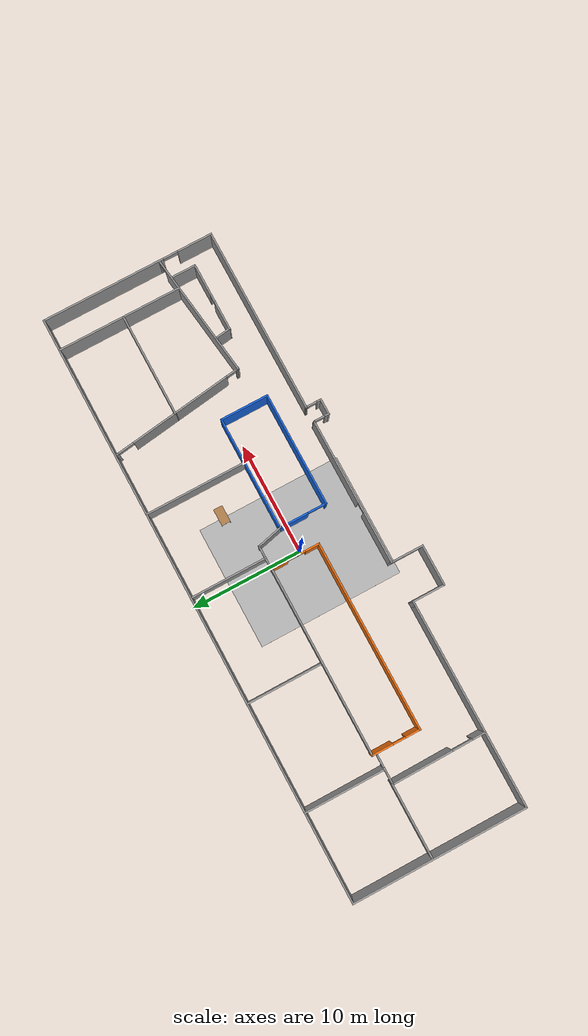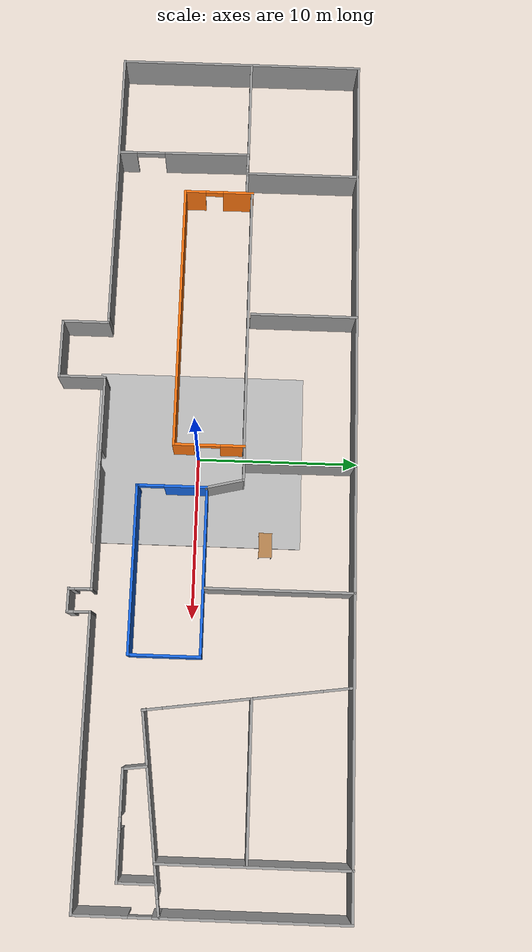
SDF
<sdf version="1.4">
 <world name="default">
  <scene><ambient>0.8 0.8 0.8 1</ambient><background>0.7 0.7 0.7 1</background><shadows>true</shadows></scene>
  <include><uri>model://sun</uri><pose>-2.0 2.0 2.0 0 0 0</pose></include>
  <include><uri>model://quarto_andar/pisosala</uri></include>
  <include><uri>model://quarto_andar/mesa</uri><pose>5.5 4.3 0.4 0 0 0</pose></include>
  <include><uri>model://quarto_andar</uri></include>
  <physics type="ode">
   <real_time_update_rate>1000.0</real_time_update_rate>
   <max_step_size>0.001</max_step_size>
   <real_time_factor>1</real_time_factor>
   <ode>
    <solver>
     <type>quick</type>
     <iters>150</iters>
     <precon_iters>0</precon_iters>
     <sor>1.400000</sor>
     <use_dynamic_moi_rescaling>1</use_dynamic_moi_rescaling>
    </solver>
    <constraints>
     <cfm>0.00001</cfm>
     <erp>0.2</erp>
     <contact_max_correcting_vel>2000.000000</contact_max_correcting_vel>
     <contact_surface_layer>0.01000</contact_surface_layer>
    </constraints>
   </ode>
  </physics>
 </world>
</sdf>

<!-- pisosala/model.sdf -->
<sdf version="1.6">
  <model name="pisosala_forca">
    <static>true</static>
    <link name="course_link">
      <collision name="course_collision">
        <geometry>
          <plane>
            <normal>0 0 1</normal>
            <size>10 13</size>
          </plane>
        </geometry>
        <surface>
          <friction>
            <ode>
              <mu>100</mu>
              <mu2>50</mu2>
            </ode>
          </friction>
        </surface>
      </collision>
      <visual name="course_visual">
        <cast_shadows>false</cast_shadows>
        <geometry>
          <mesh>
            <uri>model://forca/pisosala/materials/scripts/piso.dae</uri>
            <scale>1 1 1</scale>
          </mesh>
        </geometry>
      </visual>
    </link>
  </model>
</sdf>

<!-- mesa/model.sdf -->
<sdf version='1.6'>
  <model name='lab404'>
    <model name='table'>
      <static>1</static>
      <link name='link'>
        <collision name='surface'>
          <pose frame=''>0 0 1 0 -0 0</pose>
          <geometry>
            <box>
              <size>1.5 0.8 0.03</size>
            </box>
          </geometry>
          <surface>
            <friction>
              <ode>
                <mu>0.6</mu>
                <mu2>0.6</mu2>
              </ode>
            </friction>
          </surface>
        </collision>
        <visual name='visual1'>
          <pose frame=''>0 0 1 0 -0 0</pose>
          <geometry>
            <box>
              <size>1.5 0.8 0.03</size>
            </box>
          </geometry>
          <material>
            <script>
              <uri>file://media/materials/scripts/gazebo.material</uri>
              <name>Gazebo/Wood</name>
            </script>
          </material>
        </visual>
        <collision name='front_left_leg'>
          <pose frame=''>0.68 0.38 0.5 0 -0 0</pose>
          <geometry>
            <cylinder>
              <radius>0.02</radius>
              <length>1</length>
            </cylinder>
          </geometry>
        </collision>
        <visual name='front_left_leg'>
          <pose frame=''>0.68 0.38 0.5 0 -0 0</pose>
          <geometry>
            <cylinder>
              <radius>0.02</radius>
              <length>1</length>
            </cylinder>
          </geometry>
          <material>
            <script>
              <uri>file://media/materials/scripts/gazebo.material</uri>
              <name>Gazebo/Grey</name>
            </script>
          </material>
        </visual>
        <collision name='front_right_leg'>
          <pose frame=''>0.68 -0.38 0.5 0 -0 0</pose>
          <geometry>
            <cylinder>
              <radius>0.02</radius>
              <length>1</length>
            </cylinder>
          </geometry>
        </collision>
        <visual name='front_right_leg'>
          <pose frame=''>0.68 -0.38 0.5 0 -0 0</pose>
          <geometry>
            <cylinder>
              <radius>0.02</radius>
              <length>1</length>
            </cylinder>
          </geometry>
          <material>
            <script>
              <uri>file://media/materials/scripts/gazebo.material</uri>
              <name>Gazebo/Grey</name>
            </script>
          </material>
        </visual>
        <collision name='back_right_leg'>
          <pose frame=''>-0.68 -0.38 0.5 0 -0 0</pose>
          <geometry>
            <cylinder>
              <radius>0.02</radius>
              <length>1</length>
            </cylinder>
          </geometry>
        </collision>
        <visual name='back_right_leg'>
          <pose frame=''>-0.68 -0.38 0.5 0 -0 0</pose>
          <geometry>
            <cylinder>
              <radius>0.02</radius>
              <length>1</length>
            </cylinder>
          </geometry>
          <material>
            <script>
              <uri>file://media/materials/scripts/gazebo.material</uri>
              <name>Gazebo/Grey</name>
            </script>
          </material>
        </visual>
        <collision name='back_left_leg'>
          <pose frame=''>-0.68 0.38 0.5 0 -0 0</pose>
          <geometry>
            <cylinder>
              <radius>0.02</radius>
              <length>1</length>
            </cylinder>
          </geometry>
        </collision>
        <visual name='back_left_leg'>
          <pose frame=''>-0.68 0.38 0.5 0 -0 0</pose>
          <geometry>
            <cylinder>
              <radius>0.02</radius>
              <length>1</length>
            </cylinder>
          </geometry>
          <material>
            <script>
              <uri>file://media/materials/scripts/gazebo.material</uri>
              <name>Gazebo/Grey</name>
            </script>
          </material>
        </visual>
      </link>
      <pose frame=''>0 -0 0 0 -0 0</pose>
    </model>
    <static>0</static>
    <allow_auto_disable>1</allow_auto_disable>
  </model>
</sdf>

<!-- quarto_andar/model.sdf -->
<sdf version='1.6'>
  <model name='quarto_andar'>
    <pose frame=''>0.034945 0.423083 0 0 -0 0</pose>
    <link name='Wall_0'>
      <collision name='Wall_0_Collision'>
        <geometry>
          <box>
            <size>15.75 0.15 2.5</size>
          </box>
        </geometry>
        <pose frame=''>0 0 1.25 0 -0 0</pose>
      </collision>
      <visual name='Wall_0_Visual'>
        <pose frame=''>0 0 1.25 0 -0 0</pose>
        <geometry>
          <box>
            <size>15.75 0.15 2.5</size>
          </box>
        </geometry>
        <material>
          <script>
            <uri>file://media/materials/scripts/gazebo.material</uri>
            <name>Gazebo/Grey</name>
          </script>
          <ambient>1 1 1 1</ambient>
        </material>
        <meta>
          <layer>0</layer>
        </meta>
      </visual>
      <pose frame=''>-26.575 1.42319 0 0 -0 -1.5708</pose>
    </link>
    <link name='Wall_1'>
      <collision name='Wall_1_Collision'>
        <geometry>
          <box>
            <size>18.25 0.15 2.5</size>
          </box>
        </geometry>
        <pose frame=''>0 0 1.25 0 -0 0</pose>
      </collision>
      <visual name='Wall_1_Visual'>
        <pose frame=''>0 0 1.25 0 -0 0</pose>
        <geometry>
          <box>
            <size>18.25 0.15 2.5</size>
          </box>
        </geometry>
        <material>
          <script>
            <uri>file://media/materials/scripts/gazebo.material</uri>
            <name>Gazebo/Grey</name>
          </script>
          <ambient>0.333333 0.341176 0.32549 1</ambient>
        </material>
        <meta>
          <layer>0</layer>
        </meta>
      </visual>
      <pose frame=''>-17.525 -6.37681 0 0 -0 0</pose>
    </link>
    <link name='Wall_10'>
      <pose frame=''>-19.9586 -2.12464 0 0 -0 1.58125</pose>
      <visual name='Wall_10_Visual_0'>
        <pose frame=''>-3.66811 0 1.25 0 -0 0</pose>
        <geometry>
          <box>
            <size>1.15436 0.15 2.5</size>
          </box>
        </geometry>
        <material>
          <script>
            <uri>file://media/materials/scripts/gazebo.material</uri>
            <name>Gazebo/Grey</name>
          </script>
          <ambient>0.333333 0.341176 0.32549 1</ambient>
        </material>
        <meta>
          <layer>0</layer>
        </meta>
      </visual>
      <collision name='Wall_10_Collision_0'>
        <geometry>
          <box>
            <size>1.15436 0.15 2.5</size>
          </box>
        </geometry>
        <pose frame=''>-3.66811 0 1.25 0 -0 0</pose>
      </collision>
      <visual name='Wall_10_Visual_1'>
        <pose frame=''>1.49044 0 1.25 0 -0 0</pose>
        <geometry>
          <box>
            <size>5.5097 0.15 2.5</size>
          </box>
        </geometry>
        <material>
          <script>
            <uri>file://media/materials/scripts/gazebo.material</uri>
            <name>Gazebo/Grey</name>
          </script>
          <ambient>0.333333 0.341176 0.32549 1</ambient>
        </material>
        <meta>
          <layer>0</layer>
        </meta>
      </visual>
      <collision name='Wall_10_Collision_1'>
        <geometry>
          <box>
            <size>5.5097 0.15 2.5</size>
          </box>
        </geometry>
        <pose frame=''>1.49044 0 1.25 0 -0 0</pose>
      </collision>
      <visual name='Wall_10_Visual_2'>
        <pose frame=''>-2.17767 0 2.25 0 -0 0</pose>
        <geometry>
          <box>
            <size>1.82652 0.15 0.5</size>
          </box>
        </geometry>
        <material>
          <script>
            <uri>file://media/materials/scripts/gazebo.material</uri>
            <name>Gazebo/Grey</name>
          </script>
          <ambient>0.333333 0.341176 0.32549 1</ambient>
        </material>
        <meta>
          <layer>0</layer>
        </meta>
      </visual>
      <collision name='Wall_10_Collision_2'>
        <geometry>
          <box>
            <size>1.82652 0.15 0.5</size>
          </box>
        </geometry>
        <pose frame=''>-2.17767 0 2.25 0 -0 0</pose>
      </collision>
    </link>
    <link name='Wall_11'>
      <collision name='Wall_11_Collision'>
        <geometry>
          <box>
            <size>6.62054 0.15 2.5</size>
          </box>
        </geometry>
        <pose frame=''>0 0 1.25 0 -0 0</pose>
      </collision>
      <visual name='Wall_11_Visual'>
        <pose frame=''>0 0 1.25 0 -0 0</pose>
        <geometry>
          <box>
            <size>6.62054 0.15 2.5</size>
          </box>
        </geometry>
        <material>
          <script>
            <uri>file://media/materials/scripts/gazebo.material</uri>
            <name>Gazebo/Grey</name>
          </script>
          <ambient>1 1 1 1</ambient>
        </material>
        <meta>
          <layer>0</layer>
        </meta>
      </visual>
      <pose frame=''>-23.2375 2.07898 0 0 -0 3.14159</pose>
    </link>
    <link name='Wall_13'>
      <collision name='Wall_13_Collision'>
        <geometry>
          <box>
            <size>7.25 0.15 2.5</size>
          </box>
        </geometry>
        <pose frame=''>0 0 1.25 0 -0 0</pose>
      </collision>
      <visual name='Wall_13_Visual'>
        <pose frame=''>0 0 1.25 0 -0 0</pose>
        <geometry>
          <box>
            <size>7.25 0.15 2.5</size>
          </box>
        </geometry>
        <material>
          <script>
            <uri>file://media/materials/scripts/gazebo.material</uri>
            <name>Gazebo/Grey</name>
          </script>
          <ambient>1 1 1 1</ambient>
        </material>
        <meta>
          <layer>0</layer>
        </meta>
      </visual>
      <pose frame=''>-18.6614 5.66281 0 0 -0 -1.5708</pose>
    </link>
    <link name='Wall_17'>
      <collision name='Wall_17_Collision'>
        <geometry>
          <box>
            <size>17 0.15 2.5</size>
          </box>
        </geometry>
        <pose frame=''>0 0 1.25 0 -0 0</pose>
      </collision>
      <visual name='Wall_17_Visual'>
        <pose frame=''>0 0 1.25 0 -0 0</pose>
        <geometry>
          <box>
            <size>17 0.15 2.5</size>
          </box>
        </geometry>
        <material>
          <script>
            <uri>file://media/materials/scripts/gazebo.material</uri>
            <name>Gazebo/Grey</name>
          </script>
          <ambient>0.976471 0.45098 0.054902 1</ambient>
        </material>
        <meta>
          <layer>0</layer>
        </meta>
      </visual>
      <pose frame=''>-8.8443 -1.93121 0 0 -0 0</pose>
    </link>
    <link name='Wall_18'>
      <pose frame=''>-0.419302 0.243787 0 0 -0 1.5708</pose>
      <visual name='Wall_18_Visual_0'>
        <pose frame=''>-1.587 0 1.25 0 -0 0</pose>
        <geometry>
          <box>
            <size>1.32599 0.15 2.5</size>
          </box>
        </geometry>
        <material>
          <script>
            <uri>file://media/materials/scripts/gazebo.material</uri>
            <name>Gazebo/Grey</name>
          </script>
          <ambient>0.976471 0.45098 0.054902 1</ambient>
        </material>
        <meta>
          <layer>0</layer>
        </meta>
      </visual>
      <collision name='Wall_18_Collision_0'>
        <geometry>
          <box>
            <size>1.32599 0.15 2.5</size>
          </box>
        </geometry>
        <pose frame=''>-1.587 0 1.25 0 -0 0</pose>
      </collision>
      <visual name='Wall_18_Visual_1'>
        <pose frame=''>1.46826 0 1.25 0 -0 0</pose>
        <geometry>
          <box>
            <size>1.56347 0.15 2.5</size>
          </box>
        </geometry>
        <material>
          <script>
            <uri>file://media/materials/scripts/gazebo.material</uri>
            <name>Gazebo/Grey</name>
          </script>
          <ambient>0.976471 0.45098 0.054902 1</ambient>
        </material>
        <meta>
          <layer>0</layer>
        </meta>
      </visual>
      <collision name='Wall_18_Collision_1'>
        <geometry>
          <box>
            <size>1.56347 0.15 2.5</size>
          </box>
        </geometry>
        <pose frame=''>1.46826 0 1.25 0 -0 0</pose>
      </collision>
      <visual name='Wall_18_Visual_2'>
        <pose frame=''>-0.11874 0 2.25 0 -0 0</pose>
        <geometry>
          <box>
            <size>1.61054 0.15 0.5</size>
          </box>
        </geometry>
        <material>
          <script>
            <uri>file://media/materials/scripts/gazebo.material</uri>
            <name>Gazebo/Grey</name>
          </script>
          <ambient>0.976471 0.45098 0.054902 1</ambient>
        </material>
        <meta>
          <layer>0</layer>
        </meta>
      </visual>
      <collision name='Wall_18_Collision_2'>
        <geometry>
          <box>
            <size>1.61054 0.15 0.5</size>
          </box>
        </geometry>
        <pose frame=''>-0.11874 0 2.25 0 -0 0</pose>
      </collision>
    </link>
    <link name='Wall_19'>
      <collision name='Wall_19_Collision'>
        <geometry>
          <box>
            <size>17 0.15 2.5</size>
          </box>
        </geometry>
        <pose frame=''>0 0 1.25 0 -0 0</pose>
      </collision>
      <visual name='Wall_19_Visual'>
        <pose frame=''>0 0 1.25 0 -0 0</pose>
        <geometry>
          <box>
            <size>17 0.15 2.5</size>
          </box>
        </geometry>
        <material>
          <script>
            <uri>file://media/materials/scripts/gazebo.material</uri>
            <name>Gazebo/Grey</name>
          </script>
          <ambient>1 1 1 1</ambient>
        </material>
        <meta>
          <layer>0</layer>
        </meta>
      </visual>
      <pose frame=''>-8.8443 2.38523 0 0 -0 3.14159</pose>
    </link>
    <link name='Wall_2'>
      <collision name='Wall_2_Collision'>
        <geometry>
          <box>
            <size>0.5 0.15 2.5</size>
          </box>
        </geometry>
        <pose frame=''>0 0 1.25 0 -0 0</pose>
      </collision>
      <visual name='Wall_2_Visual'>
        <pose frame=''>0 0 1.25 0 -0 0</pose>
        <geometry>
          <box>
            <size>0.5 0.15 2.5</size>
          </box>
        </geometry>
        <material>
          <script>
            <uri>file://media/materials/scripts/gazebo.material</uri>
            <name>Gazebo/Grey</name>
          </script>
          <ambient>0.333333 0.341176 0.32549 1</ambient>
        </material>
        <meta>
          <layer>0</layer>
        </meta>
      </visual>
      <pose frame=''>-8.3 -6.37681 0 0 -0 0</pose>
    </link>
    <link name='Wall_21'>
      <pose frame=''>-17.2693 0.243787 0 0 -0 1.5708</pose>
      <visual name='Wall_21_Visual_0'>
        <pose frame=''>-1.55247 0 1.25 0 -0 0</pose>
        <geometry>
          <box>
            <size>1.39506 0.15 2.5</size>
          </box>
        </geometry>
        <material>
          <script>
            <uri>file://media/materials/scripts/gazebo.material</uri>
            <name>Gazebo/Grey</name>
          </script>
          <ambient>0.976471 0.45098 0.054902 1</ambient>
        </material>
        <meta>
          <layer>0</layer>
        </meta>
      </visual>
      <collision name='Wall_21_Collision_0'>
        <geometry>
          <box>
            <size>1.39506 0.15 2.5</size>
          </box>
        </geometry>
        <pose frame=''>-1.55247 0 1.25 0 -0 0</pose>
      </collision>
      <visual name='Wall_21_Visual_1'>
        <pose frame=''>1.25785 0 1.25 0 -0 0</pose>
        <geometry>
          <box>
            <size>1.98431 0.15 2.5</size>
          </box>
        </geometry>
        <material>
          <script>
            <uri>file://media/materials/scripts/gazebo.material</uri>
            <name>Gazebo/Grey</name>
          </script>
          <ambient>0.976471 0.45098 0.054902 1</ambient>
        </material>
        <meta>
          <layer>0</layer>
        </meta>
      </visual>
      <collision name='Wall_21_Collision_1'>
        <geometry>
          <box>
            <size>1.98431 0.15 2.5</size>
          </box>
        </geometry>
        <pose frame=''>1.25785 0 1.25 0 -0 0</pose>
      </collision>
      <visual name='Wall_21_Visual_2'>
        <pose frame=''>-0.294622 0 2.25 0 -0 0</pose>
        <geometry>
          <box>
            <size>1.12063 0.15 0.5</size>
          </box>
        </geometry>
        <material>
          <script>
            <uri>file://media/materials/scripts/gazebo.material</uri>
            <name>Gazebo/Grey</name>
          </script>
          <ambient>0.976471 0.45098 0.054902 1</ambient>
        </material>
        <meta>
          <layer>0</layer>
        </meta>
      </visual>
      <collision name='Wall_21_Collision_2'>
        <geometry>
          <box>
            <size>1.12063 0.15 0.5</size>
          </box>
        </geometry>
        <pose frame=''>-0.294622 0 2.25 0 -0 0</pose>
      </collision>
    </link>
    <link name='Wall_23'>
      <collision name='Wall_23_Collision'>
        <geometry>
          <box>
            <size>6.75 0.15 2.5</size>
          </box>
        </geometry>
        <pose frame=''>0 0 1.25 0 -0 0</pose>
      </collision>
      <visual name='Wall_23_Visual'>
        <pose frame=''>0 0 1.25 0 -0 0</pose>
        <geometry>
          <box>
            <size>6.75 0.15 2.5</size>
          </box>
        </geometry>
        <material>
          <script>
            <uri>file://media/materials/scripts/gazebo.material</uri>
            <name>Gazebo/Grey</name>
          </script>
          <ambient>1 1 1 1</ambient>
        </material>
        <meta>
          <layer>0</layer>
        </meta>
      </visual>
      <pose frame=''>-8.99298 5.89781 0 0 -0 -1.5708</pose>
    </link>
    <link name='Wall_27'>
      <collision name='Wall_27_Collision'>
        <geometry>
          <box>
            <size>6.88613 0.15 2.5</size>
          </box>
        </geometry>
        <pose frame=''>0 0 1.25 0 -0 0</pose>
      </collision>
      <visual name='Wall_27_Visual'>
        <pose frame=''>0 0 1.25 0 -0 0</pose>
        <geometry>
          <box>
            <size>6.88613 0.15 2.5</size>
          </box>
        </geometry>
        <material>
          <script>
            <uri>file://media/materials/scripts/gazebo.material</uri>
            <name>Gazebo/Grey</name>
          </script>
          <ambient>1 1 1 1</ambient>
        </material>
        <meta>
          <layer>0</layer>
        </meta>
      </visual>
      <pose frame=''>0.599951 5.82122 0 0 -0 1.57213</pose>
    </link>
    <link name='Wall_29'>
      <collision name='Wall_29_Collision'>
        <geometry>
          <box>
            <size>2.42218 0.15 2.5</size>
          </box>
        </geometry>
        <pose frame=''>0 0 1.25 0 -0 0</pose>
      </collision>
      <visual name='Wall_29_Visual'>
        <pose frame=''>0 0 1.25 0 -0 0</pose>
        <geometry>
          <box>
            <size>2.42218 0.15 2.5</size>
          </box>
        </geometry>
        <material>
          <script>
            <uri>file://media/materials/scripts/gazebo.material</uri>
            <name>Gazebo/Grey</name>
          </script>
          <ambient>1 1 1 1</ambient>
        </material>
        <meta>
          <layer>0</layer>
        </meta>
      </visual>
      <pose frame=''>1.94624 1.29692 0 0 -0 -1.33694</pose>
    </link>
    <link name='Wall_3'>
      <collision name='Wall_3_Collision'>
        <geometry>
          <box>
            <size>3 0.15 2.5</size>
          </box>
        </geometry>
        <pose frame=''>0 0 1.25 0 -0 0</pose>
      </collision>
      <visual name='Wall_3_Visual'>
        <pose frame=''>0 0 1.25 0 -0 0</pose>
        <geometry>
          <box>
            <size>3 0.15 2.5</size>
          </box>
        </geometry>
        <material>
          <script>
            <uri>file://media/materials/scripts/gazebo.material</uri>
            <name>Gazebo/Grey</name>
          </script>
          <ambient>0.333333 0.341176 0.32549 1</ambient>
        </material>
        <meta>
          <layer>0</layer>
        </meta>
      </visual>
      <pose frame=''>-8.125 -7.80181 0 0 -0 -1.5708</pose>
    </link>
    <link name='Wall_31'>
      <collision name='Wall_31_Collision'>
        <geometry>
          <box>
            <size>9 0.15 2.5</size>
          </box>
        </geometry>
        <pose frame=''>0 0 1.25 0 -0 0</pose>
      </collision>
      <visual name='Wall_31_Visual'>
        <pose frame=''>0 0 1.25 0 -0 0</pose>
        <geometry>
          <box>
            <size>9 0.15 2.5</size>
          </box>
        </geometry>
        <material>
          <script>
            <uri>file://media/materials/scripts/gazebo.material</uri>
            <name>Gazebo/Grey</name>
          </script>
          <ambient>1 1 1 1</ambient>
        </material>
        <meta>
          <layer>0</layer>
        </meta>
      </visual>
      <pose frame=''>8.29134 4.76549 0 0 -0 1.5708</pose>
    </link>
    <link name='Wall_33'>
      <pose frame=''>2.20086 -1.90819 0 0 -0 -1.57037</pose>
      <visual name='Wall_33_Visual_0'>
        <pose frame=''>-0.85605 0 1.25 0 -0 0</pose>
        <geometry>
          <box>
            <size>2.6378 0.15 2.5</size>
          </box>
        </geometry>
        <material>
          <script>
            <uri>file://media/materials/scripts/gazebo.material</uri>
            <name>Gazebo/Grey</name>
          </script>
          <ambient>0.0862745 0.403922 0.890196 1</ambient>
        </material>
        <meta>
          <layer>0</layer>
        </meta>
      </visual>
      <collision name='Wall_33_Collision_0'>
        <geometry>
          <box>
            <size>2.6378 0.15 2.5</size>
          </box>
        </geometry>
        <pose frame=''>-0.85605 0 1.25 0 -0 0</pose>
      </collision>
      <visual name='Wall_33_Visual_1'>
        <pose frame=''>2.08884 0 1.25 0 -0 0</pose>
        <geometry>
          <box>
            <size>0.172213 0.15 2.5</size>
          </box>
        </geometry>
        <material>
          <script>
            <uri>file://media/materials/scripts/gazebo.material</uri>
            <name>Gazebo/Grey</name>
          </script>
          <ambient>0.0862745 0.403922 0.890196 1</ambient>
        </material>
        <meta>
          <layer>0</layer>
        </meta>
      </visual>
      <collision name='Wall_33_Collision_1'>
        <geometry>
          <box>
            <size>0.172213 0.15 2.5</size>
          </box>
        </geometry>
        <pose frame=''>2.08884 0 1.25 0 -0 0</pose>
      </collision>
      <visual name='Wall_33_Visual_2'>
        <pose frame=''>1.23279 0 2.25 0 -0 0</pose>
        <geometry>
          <box>
            <size>1.53989 0.15 0.5</size>
          </box>
        </geometry>
        <material>
          <script>
            <uri>file://media/materials/scripts/gazebo.material</uri>
            <name>Gazebo/Grey</name>
          </script>
          <ambient>0.0862745 0.403922 0.890196 1</ambient>
        </material>
        <meta>
          <layer>0</layer>
        </meta>
      </visual>
      <collision name='Wall_33_Collision_2'>
        <geometry>
          <box>
            <size>1.53989 0.15 0.5</size>
          </box>
        </geometry>
        <pose frame=''>1.23279 0 2.25 0 -0 0</pose>
      </collision>
    </link>
    <link name='Wall_35'>
      <collision name='Wall_35_Collision'>
        <geometry>
          <box>
            <size>10 0.15 2.5</size>
          </box>
        </geometry>
        <pose frame=''>0 0 1.25 0 -0 0</pose>
      </collision>
      <visual name='Wall_35_Visual'>
        <pose frame=''>0 0 1.25 0 -0 0</pose>
        <geometry>
          <box>
            <size>10 0.15 2.5</size>
          </box>
        </geometry>
        <material>
          <script>
            <uri>file://media/materials/scripts/gazebo.material</uri>
            <name>Gazebo/Grey</name>
          </script>
          <ambient>0.0862745 0.403922 0.890196 1</ambient>
        </material>
        <meta>
          <layer>0</layer>
        </meta>
      </visual>
      <pose frame=''>7.37712 0.21748 0 0 -0 3.14159</pose>
    </link>
    <link name='Wall_38'>
      <collision name='Wall_38_Collision'>
        <geometry>
          <box>
            <size>10.2599 0.15 2.5</size>
          </box>
        </geometry>
        <pose frame=''>0 0 1.25 0 -0 0</pose>
      </collision>
      <visual name='Wall_38_Visual'>
        <pose frame=''>0 0 1.25 0 -0 0</pose>
        <geometry>
          <box>
            <size>10.2599 0.15 2.5</size>
          </box>
        </geometry>
        <material>
          <script>
            <uri>file://media/materials/scripts/gazebo.material</uri>
            <name>Gazebo/Grey</name>
          </script>
          <ambient>0.0862745 0.403922 0.890196 1</ambient>
        </material>
        <meta>
          <layer>0</layer>
        </meta>
      </visual>
      <pose frame=''>7.25673 -4.02715 0 0 -0 -0.00046</pose>
    </link>
    <link name='Wall_4'>
      <collision name='Wall_4_Collision'>
        <geometry>
          <box>
            <size>3.75 0.15 2.5</size>
          </box>
        </geometry>
        <pose frame=''>0 0 1.25 0 -0 0</pose>
      </collision>
      <visual name='Wall_4_Visual'>
        <pose frame=''>0 0 1.25 0 -0 0</pose>
        <geometry>
          <box>
            <size>3.75 0.15 2.5</size>
          </box>
        </geometry>
        <material>
          <script>
            <uri>file://media/materials/scripts/gazebo.material</uri>
            <name>Gazebo/Grey</name>
          </script>
          <ambient>0.333333 0.341176 0.32549 1</ambient>
        </material>
        <meta>
          <layer>0</layer>
        </meta>
      </visual>
      <pose frame=''>-6.325 -9.22681 0 0 -0 0</pose>
    </link>
    <link name='Wall_40'>
      <collision name='Wall_40_Collision'>
        <geometry>
          <box>
            <size>4.40114 0.15 2.5</size>
          </box>
        </geometry>
        <pose frame=''>0 0 1.25 0 -0 0</pose>
      </collision>
      <visual name='Wall_40_Visual'>
        <pose frame=''>0 0 1.25 0 -0 0</pose>
        <geometry>
          <box>
            <size>4.40114 0.15 2.5</size>
          </box>
        </geometry>
        <material>
          <script>
            <uri>file://media/materials/scripts/gazebo.material</uri>
            <name>Gazebo/Grey</name>
          </script>
          <ambient>0.0862745 0.403922 0.890196 1</ambient>
        </material>
        <meta>
          <layer>0</layer>
        </meta>
      </visual>
      <pose frame=''>12.3117 -1.90391 0 0 -0 1.5708</pose>
    </link>
    <link name='Wall_42'>
      <collision name='Wall_42_Collision'>
        <geometry>
          <box>
            <size>11.25 0.15 2.5</size>
          </box>
        </geometry>
        <pose frame=''>0 0 1.25 0 -0 0</pose>
      </collision>
      <visual name='Wall_42_Visual'>
        <pose frame=''>0 0 1.25 0 -0 0</pose>
        <geometry>
          <box>
            <size>11.25 0.15 2.5</size>
          </box>
        </geometry>
        <material>
          <script>
            <uri>file://media/materials/scripts/gazebo.material</uri>
            <name>Gazebo/Grey</name>
          </script>
          <ambient>1 1 1 1</ambient>
        </material>
        <meta>
          <layer>0</layer>
        </meta>
      </visual>
      <pose frame=''>23.7457 3.67681 0 0 -0 -1.5708</pose>
    </link>
    <link name='Wall_46'>
      <pose frame=''>20.9759 -2.25046 0 0 -0 0.131101</pose>
      <visual name='Wall_46_Visual_0'>
        <pose frame=''>-0.514236 0 1.25 0 -0 0</pose>
        <geometry>
          <box>
            <size>10.3504 0.15 2.5</size>
          </box>
        </geometry>
        <material>
          <script>
            <uri>file://media/materials/scripts/gazebo.material</uri>
            <name>Gazebo/Grey</name>
          </script>
          <ambient>1 1 1 1</ambient>
        </material>
        <meta>
          <layer>0</layer>
        </meta>
      </visual>
      <collision name='Wall_46_Collision_0'>
        <geometry>
          <box>
            <size>10.3504 0.15 2.5</size>
          </box>
        </geometry>
        <pose frame=''>-0.514236 0 1.25 0 -0 0</pose>
      </collision>
      <visual name='Wall_46_Visual_1'>
        <pose frame=''>5.62519 0 1.25 0 -0 0</pose>
        <geometry>
          <box>
            <size>0.128471 0.15 2.5</size>
          </box>
        </geometry>
        <material>
          <script>
            <uri>file://media/materials/scripts/gazebo.material</uri>
            <name>Gazebo/Grey</name>
          </script>
          <ambient>1 1 1 1</ambient>
        </material>
        <meta>
          <layer>0</layer>
        </meta>
      </visual>
      <collision name='Wall_46_Collision_1'>
        <geometry>
          <box>
            <size>0.128471 0.15 2.5</size>
          </box>
        </geometry>
        <pose frame=''>5.62519 0 1.25 0 -0 0</pose>
      </collision>
      <visual name='Wall_46_Visual_2'>
        <pose frame=''>5.11095 0 2.25 0 -0 0</pose>
        <geometry>
          <box>
            <size>0.9 0.15 0.5</size>
          </box>
        </geometry>
        <material>
          <script>
            <uri>file://media/materials/scripts/gazebo.material</uri>
            <name>Gazebo/Grey</name>
          </script>
          <ambient>1 1 1 1</ambient>
        </material>
        <meta>
          <layer>0</layer>
        </meta>
      </visual>
      <collision name='Wall_46_Collision_2'>
        <geometry>
          <box>
            <size>0.9 0.15 0.5</size>
          </box>
        </geometry>
        <pose frame=''>5.11095 0 2.25 0 -0 0</pose>
      </collision>
    </link>
    <link name='Wall_48'>
      <collision name='Wall_48_Collision'>
        <geometry>
          <box>
            <size>2.25 0.15 2.5</size>
          </box>
        </geometry>
        <pose frame=''>0 0 1.25 0 -0 0</pose>
      </collision>
      <visual name='Wall_48_Visual'>
        <pose frame=''>0 0 1.25 0 -0 0</pose>
        <geometry>
          <box>
            <size>2.25 0.15 2.5</size>
          </box>
        </geometry>
        <material>
          <script>
            <uri>file://media/materials/scripts/gazebo.material</uri>
            <name>Gazebo/Grey</name>
          </script>
          <ambient>1 1 1 1</ambient>
        </material>
        <meta>
          <layer>0</layer>
        </meta>
      </visual>
      <pose frame=''>24.8236 -2.89715 0 0 -0 -1.5708</pose>
    </link>
    <link name='Wall_49'>
      <pose frame=''>21.7736 -3.94715 0 0 -0 3.14159</pose>
      <visual name='Wall_49_Visual_0'>
        <pose frame=''>-1.6967 0 1.25 0 -0 0</pose>
        <geometry>
          <box>
            <size>2.8566 0.15 2.5</size>
          </box>
        </geometry>
        <material>
          <script>
            <uri>file://media/materials/scripts/gazebo.material</uri>
            <name>Gazebo/Grey</name>
          </script>
          <ambient>1 1 1 1</ambient>
        </material>
        <meta>
          <layer>0</layer>
        </meta>
      </visual>
      <collision name='Wall_49_Collision_0'>
        <geometry>
          <box>
            <size>2.8566 0.15 2.5</size>
          </box>
        </geometry>
        <pose frame=''>-1.6967 0 1.25 0 -0 0</pose>
      </collision>
      <visual name='Wall_49_Visual_1'>
        <pose frame=''>1.7944 0 1.25 0 -0 0</pose>
        <geometry>
          <box>
            <size>2.6612 0.15 2.5</size>
          </box>
        </geometry>
        <material>
          <script>
            <uri>file://media/materials/scripts/gazebo.material</uri>
            <name>Gazebo/Grey</name>
          </script>
          <ambient>1 1 1 1</ambient>
        </material>
        <meta>
          <layer>0</layer>
        </meta>
      </visual>
      <collision name='Wall_49_Collision_1'>
        <geometry>
          <box>
            <size>2.6612 0.15 2.5</size>
          </box>
        </geometry>
        <pose frame=''>1.7944 0 1.25 0 -0 0</pose>
      </collision>
      <visual name='Wall_49_Visual_2'>
        <pose frame=''>0.097696 0 2.25 0 -0 0</pose>
        <geometry>
          <box>
            <size>0.732199 0.15 0.5</size>
          </box>
        </geometry>
        <material>
          <script>
            <uri>file://media/materials/scripts/gazebo.material</uri>
            <name>Gazebo/Grey</name>
          </script>
          <ambient>1 1 1 1</ambient>
        </material>
        <meta>
          <layer>0</layer>
        </meta>
      </visual>
      <collision name='Wall_49_Collision_2'>
        <geometry>
          <box>
            <size>0.732199 0.15 0.5</size>
          </box>
        </geometry>
        <pose frame=''>0.097696 0 2.25 0 -0 0</pose>
      </collision>
    </link>
    <link name='Wall_5'>
      <collision name='Wall_5_Collision'>
        <geometry>
          <box>
            <size>3 0.15 2.5</size>
          </box>
        </geometry>
        <pose frame=''>0 0 1.25 0 -0 0</pose>
      </collision>
      <visual name='Wall_5_Visual'>
        <pose frame=''>0 0 1.25 0 -0 0</pose>
        <geometry>
          <box>
            <size>3 0.15 2.5</size>
          </box>
        </geometry>
        <material>
          <script>
            <uri>file://media/materials/scripts/gazebo.material</uri>
            <name>Gazebo/Grey</name>
          </script>
          <ambient>0.333333 0.341176 0.32549 1</ambient>
        </material>
        <meta>
          <layer>0</layer>
        </meta>
      </visual>
      <pose frame=''>-4.525 -7.80181 0 0 -0 1.5708</pose>
    </link>
    <link name='Wall_50'>
      <collision name='Wall_50_Collision'>
        <geometry>
          <box>
            <size>1.48698 0.15 2.5</size>
          </box>
        </geometry>
        <pose frame=''>0 0 1.25 0 -0 0</pose>
      </collision>
      <visual name='Wall_50_Visual'>
        <pose frame=''>0 0 1.25 0 -0 0</pose>
        <geometry>
          <box>
            <size>1.48698 0.15 2.5</size>
          </box>
        </geometry>
        <material>
          <script>
            <uri>file://media/materials/scripts/gazebo.material</uri>
            <name>Gazebo/Grey</name>
          </script>
          <ambient>1 1 1 1</ambient>
        </material>
        <meta>
          <layer>0</layer>
        </meta>
      </visual>
      <pose frame=''>18.6382 -3.28413 0 0 -0 1.69882</pose>
    </link>
    <link name='Wall_56'>
      <pose frame=''>14.609 3.03411 0 0 -0 -1.43482</pose>
      <visual name='Wall_56_Visual_0'>
        <pose frame=''>-6.05511 0 1.25 0 -0 0</pose>
        <geometry>
          <box>
            <size>0.20661 0.15 2.5</size>
          </box>
        </geometry>
        <material>
          <script>
            <uri>file://media/materials/scripts/gazebo.material</uri>
            <name>Gazebo/Grey</name>
          </script>
          <ambient>1 1 1 1</ambient>
        </material>
        <meta>
          <layer>0</layer>
        </meta>
      </visual>
      <collision name='Wall_56_Collision_0'>
        <geometry>
          <box>
            <size>0.20661 0.15 2.5</size>
          </box>
        </geometry>
        <pose frame=''>-6.05511 0 1.25 0 -0 0</pose>
      </collision>
      <visual name='Wall_56_Visual_1'>
        <pose frame=''>0.24208 0 1.25 0 -0 0</pose>
        <geometry>
          <box>
            <size>9.36341 0.15 2.5</size>
          </box>
        </geometry>
        <material>
          <script>
            <uri>file://media/materials/scripts/gazebo.material</uri>
            <name>Gazebo/Grey</name>
          </script>
          <ambient>1 1 1 1</ambient>
        </material>
        <meta>
          <layer>0</layer>
        </meta>
      </visual>
      <collision name='Wall_56_Collision_1'>
        <geometry>
          <box>
            <size>9.36341 0.15 2.5</size>
          </box>
        </geometry>
        <pose frame=''>0.24208 0 1.25 0 -0 0</pose>
      </collision>
      <visual name='Wall_56_Visual_2'>
        <pose frame=''>6.01 0 1.25 0 -0 0</pose>
        <geometry>
          <box>
            <size>0.296833 0.15 2.5</size>
          </box>
        </geometry>
        <material>
          <script>
            <uri>file://media/materials/scripts/gazebo.material</uri>
            <name>Gazebo/Grey</name>
          </script>
          <ambient>1 1 1 1</ambient>
        </material>
        <meta>
          <layer>0</layer>
        </meta>
      </visual>
      <collision name='Wall_56_Collision_2'>
        <geometry>
          <box>
            <size>0.296833 0.15 2.5</size>
          </box>
        </geometry>
        <pose frame=''>6.01 0 1.25 0 -0 0</pose>
      </collision>
      <visual name='Wall_56_Visual_3'>
        <pose frame=''>-5.19571 0 2.25 0 -0 0</pose>
        <geometry>
          <box>
            <size>1.51218 0.15 0.5</size>
          </box>
        </geometry>
        <material>
          <script>
            <uri>file://media/materials/scripts/gazebo.material</uri>
            <name>Gazebo/Grey</name>
          </script>
          <ambient>1 1 1 1</ambient>
        </material>
        <meta>
          <layer>0</layer>
        </meta>
      </visual>
      <collision name='Wall_56_Collision_3'>
        <geometry>
          <box>
            <size>1.51218 0.15 0.5</size>
          </box>
        </geometry>
        <pose frame=''>-5.19571 0 2.25 0 -0 0</pose>
      </collision>
      <visual name='Wall_56_Visual_4'>
        <pose frame=''>5.39268 0 2.25 0 -0 0</pose>
        <geometry>
          <box>
            <size>0.9378 0.15 0.5</size>
          </box>
        </geometry>
        <material>
          <script>
            <uri>file://media/materials/scripts/gazebo.material</uri>
            <name>Gazebo/Grey</name>
          </script>
          <ambient>1 1 1 1</ambient>
        </material>
        <meta>
          <layer>0</layer>
        </meta>
      </visual>
      <collision name='Wall_56_Collision_4'>
        <geometry>
          <box>
            <size>0.9378 0.15 0.5</size>
          </box>
        </geometry>
        <pose frame=''>5.39268 0 2.25 0 -0 0</pose>
      </collision>
    </link>
    <link name='Wall_59'>
      <collision name='Wall_59_Collision'>
        <geometry>
          <box>
            <size>9.25 0.15 2.5</size>
          </box>
        </geometry>
        <pose frame=''>0 0 1.25 0 -0 0</pose>
      </collision>
      <visual name='Wall_59_Visual'>
        <pose frame=''>0 0 1.25 0 -0 0</pose>
        <geometry>
          <box>
            <size>9.25 0.15 2.5</size>
          </box>
        </geometry>
        <material>
          <script>
            <uri>file://media/materials/scripts/gazebo.material</uri>
            <name>Gazebo/Grey</name>
          </script>
          <ambient>1 1 1 1</ambient>
        </material>
        <meta>
          <layer>0</layer>
        </meta>
      </visual>
      <pose frame=''>19.1243 3.28938 0 0 -0 3.14159</pose>
    </link>
    <link name='Wall_61'>
      <pose frame=''>-18.695 2.04542 0 0 -0 0</pose>
      <visual name='Wall_61_Visual_0'>
        <pose frame=''>-1.2752 0 1.25 0 -0 0</pose>
        <geometry>
          <box>
            <size>0.214105 0.15 2.5</size>
          </box>
        </geometry>
        <material>
          <script>
            <uri>file://media/materials/scripts/gazebo.material</uri>
            <name>Gazebo/Grey</name>
          </script>
          <ambient>0.333333 0.341176 0.32549 1</ambient>
        </material>
        <meta>
          <layer>0</layer>
        </meta>
      </visual>
      <collision name='Wall_61_Collision_0'>
        <geometry>
          <box>
            <size>0.214105 0.15 2.5</size>
          </box>
        </geometry>
        <pose frame=''>-1.2752 0 1.25 0 -0 0</pose>
      </collision>
      <visual name='Wall_61_Visual_1'>
        <pose frame=''>-0.033121 0 1.25 0 -0 0</pose>
        <geometry>
          <box>
            <size>0.470061 0.15 2.5</size>
          </box>
        </geometry>
        <material>
          <script>
            <uri>file://media/materials/scripts/gazebo.material</uri>
            <name>Gazebo/Grey</name>
          </script>
          <ambient>0.333333 0.341176 0.32549 1</ambient>
        </material>
        <meta>
          <layer>0</layer>
        </meta>
      </visual>
      <collision name='Wall_61_Collision_1'>
        <geometry>
          <box>
            <size>0.470061 0.15 2.5</size>
          </box>
        </geometry>
        <pose frame=''>-0.033121 0 1.25 0 -0 0</pose>
      </collision>
      <visual name='Wall_61_Visual_2'>
        <pose frame=''>1.34078 0 1.25 0 -0 0</pose>
        <geometry>
          <box>
            <size>0.082956 0.15 2.5</size>
          </box>
        </geometry>
        <material>
          <script>
            <uri>file://media/materials/scripts/gazebo.material</uri>
            <name>Gazebo/Grey</name>
          </script>
          <ambient>0.333333 0.341176 0.32549 1</ambient>
        </material>
        <meta>
          <layer>0</layer>
        </meta>
      </visual>
      <collision name='Wall_61_Collision_2'>
        <geometry>
          <box>
            <size>0.082956 0.15 2.5</size>
          </box>
        </geometry>
        <pose frame=''>1.34078 0 1.25 0 -0 0</pose>
      </collision>
      <visual name='Wall_61_Visual_3'>
        <pose frame=''>-0.718151 0 2.25 0 -0 0</pose>
        <geometry>
          <box>
            <size>0.9 0.15 0.5</size>
          </box>
        </geometry>
        <material>
          <script>
            <uri>file://media/materials/scripts/gazebo.material</uri>
            <name>Gazebo/Grey</name>
          </script>
          <ambient>0.333333 0.341176 0.32549 1</ambient>
        </material>
        <meta>
          <layer>0</layer>
        </meta>
      </visual>
      <collision name='Wall_61_Collision_3'>
        <geometry>
          <box>
            <size>0.9 0.15 0.5</size>
          </box>
        </geometry>
        <pose frame=''>-0.718151 0 2.25 0 -0 0</pose>
      </collision>
      <visual name='Wall_61_Visual_4'>
        <pose frame=''>0.750605 0 2.25 0 -0 0</pose>
        <geometry>
          <box>
            <size>1.09739 0.15 0.5</size>
          </box>
        </geometry>
        <material>
          <script>
            <uri>file://media/materials/scripts/gazebo.material</uri>
            <name>Gazebo/Grey</name>
          </script>
          <ambient>0.333333 0.341176 0.32549 1</ambient>
        </material>
        <meta>
          <layer>0</layer>
        </meta>
      </visual>
      <collision name='Wall_61_Collision_4'>
        <geometry>
          <box>
            <size>1.09739 0.15 0.5</size>
          </box>
        </geometry>
        <pose frame=''>0.750605 0 2.25 0 -0 0</pose>
      </collision>
    </link>
    <link name='Wall_63'>
      <pose frame=''>0.630698 2.41879 0 0 -0 0</pose>
      <visual name='Wall_63_Visual_0'>
        <pose frame=''>-1.03765 0 1.25 0 -0 0</pose>
        <geometry>
          <box>
            <size>0.174703 0.15 2.5</size>
          </box>
        </geometry>
        <material>
          <script>
            <uri>file://media/materials/scripts/gazebo.material</uri>
            <name>Gazebo/Grey</name>
          </script>
          <ambient>1 1 1 1</ambient>
        </material>
        <meta>
          <layer>0</layer>
        </meta>
      </visual>
      <collision name='Wall_63_Collision_0'>
        <geometry>
          <box>
            <size>0.174703 0.15 2.5</size>
          </box>
        </geometry>
        <pose frame=''>-1.03765 0 1.25 0 -0 0</pose>
      </collision>
      <visual name='Wall_63_Visual_1'>
        <pose frame=''>-0.01251 0 1.25 0 -0 0</pose>
        <geometry>
          <box>
            <size>0.179919 0.15 2.5</size>
          </box>
        </geometry>
        <material>
          <script>
            <uri>file://media/materials/scripts/gazebo.material</uri>
            <name>Gazebo/Grey</name>
          </script>
          <ambient>1 1 1 1</ambient>
        </material>
        <meta>
          <layer>0</layer>
        </meta>
      </visual>
      <collision name='Wall_63_Collision_1'>
        <geometry>
          <box>
            <size>0.179919 0.15 2.5</size>
          </box>
        </geometry>
        <pose frame=''>-0.01251 0 1.25 0 -0 0</pose>
      </collision>
      <visual name='Wall_63_Visual_2'>
        <pose frame=''>1.05123 0 1.25 0 -0 0</pose>
        <geometry>
          <box>
            <size>0.147551 0.15 2.5</size>
          </box>
        </geometry>
        <material>
          <script>
            <uri>file://media/materials/scripts/gazebo.material</uri>
            <name>Gazebo/Grey</name>
          </script>
          <ambient>1 1 1 1</ambient>
        </material>
        <meta>
          <layer>0</layer>
        </meta>
      </visual>
      <collision name='Wall_63_Collision_2'>
        <geometry>
          <box>
            <size>0.147551 0.15 2.5</size>
          </box>
        </geometry>
        <pose frame=''>1.05123 0 1.25 0 -0 0</pose>
      </collision>
      <visual name='Wall_63_Visual_3'>
        <pose frame=''>-0.526384 0 2.25 0 -0 0</pose>
        <geometry>
          <box>
            <size>0.847827 0.15 0.5</size>
          </box>
        </geometry>
        <material>
          <script>
            <uri>file://media/materials/scripts/gazebo.material</uri>
            <name>Gazebo/Grey</name>
          </script>
          <ambient>1 1 1 1</ambient>
        </material>
        <meta>
          <layer>0</layer>
        </meta>
      </visual>
      <collision name='Wall_63_Collision_3'>
        <geometry>
          <box>
            <size>0.847827 0.15 0.5</size>
          </box>
        </geometry>
        <pose frame=''>-0.526384 0 2.25 0 -0 0</pose>
      </collision>
      <visual name='Wall_63_Visual_4'>
        <pose frame=''>0.527449 0 2.25 0 -0 0</pose>
        <geometry>
          <box>
            <size>0.9 0.15 0.5</size>
          </box>
        </geometry>
        <material>
          <script>
            <uri>file://media/materials/scripts/gazebo.material</uri>
            <name>Gazebo/Grey</name>
          </script>
          <ambient>1 1 1 1</ambient>
        </material>
        <meta>
          <layer>0</layer>
        </meta>
      </visual>
      <collision name='Wall_63_Collision_4'>
        <geometry>
          <box>
            <size>0.9 0.15 0.5</size>
          </box>
        </geometry>
        <pose frame=''>0.527449 0 2.25 0 -0 0</pose>
      </collision>
    </link>
    <link name='Wall_65'>
      <pose frame=''>2.025 -6.37681 0 0 -0 0</pose>
      <visual name='Wall_65_Visual_0'>
        <pose frame=''>-4.27946 0 1.25 0 -0 0</pose>
        <geometry>
          <box>
            <size>4.69108 0.15 2.5</size>
          </box>
        </geometry>
        <material>
          <script>
            <uri>file://media/materials/scripts/gazebo.material</uri>
            <name>Gazebo/Grey</name>
          </script>
          <ambient>0.333333 0.341176 0.32549 1</ambient>
        </material>
        <meta>
          <layer>0</layer>
        </meta>
      </visual>
      <collision name='Wall_65_Collision_0'>
        <geometry>
          <box>
            <size>4.69108 0.15 2.5</size>
          </box>
        </geometry>
        <pose frame=''>-4.27946 0 1.25 0 -0 0</pose>
      </collision>
      <visual name='Wall_65_Visual_1'>
        <pose frame=''>2.79554 0 1.25 0 -0 0</pose>
        <geometry>
          <box>
            <size>7.65892 0.15 2.5</size>
          </box>
        </geometry>
        <material>
          <script>
            <uri>file://media/materials/scripts/gazebo.material</uri>
            <name>Gazebo/Grey</name>
          </script>
          <ambient>0.333333 0.341176 0.32549 1</ambient>
        </material>
        <meta>
          <layer>0</layer>
        </meta>
      </visual>
      <collision name='Wall_65_Collision_1'>
        <geometry>
          <box>
            <size>7.65892 0.15 2.5</size>
          </box>
        </geometry>
        <pose frame=''>2.79554 0 1.25 0 -0 0</pose>
      </collision>
      <visual name='Wall_65_Visual_2'>
        <pose frame=''>-1.48392 0 2.25 0 -0 0</pose>
        <geometry>
          <box>
            <size>0.9 0.15 0.5</size>
          </box>
        </geometry>
        <material>
          <script>
            <uri>file://media/materials/scripts/gazebo.material</uri>
            <name>Gazebo/Grey</name>
          </script>
          <ambient>0.333333 0.341176 0.32549 1</ambient>
        </material>
        <meta>
          <layer>0</layer>
        </meta>
      </visual>
      <collision name='Wall_65_Collision_2'>
        <geometry>
          <box>
            <size>0.9 0.15 0.5</size>
          </box>
        </geometry>
        <pose frame=''>-1.48392 0 2.25 0 -0 0</pose>
      </collision>
    </link>
    <link name='Wall_66'>
      <pose frame=''>8.58334 -7.05195 0 0 -0 -1.55844</pose>
      <visual name='Wall_66_Visual_0'>
        <pose frame=''>-0.668077 0 1.25 0 -0 0</pose>
        <geometry>
          <box>
            <size>0.16423 0.15 2.5</size>
          </box>
        </geometry>
        <material>
          <script>
            <uri>file://media/materials/scripts/gazebo.material</uri>
            <name>Gazebo/Grey</name>
          </script>
          <ambient>0.333333 0.341176 0.32549 1</ambient>
        </material>
        <meta>
          <layer>0</layer>
        </meta>
      </visual>
      <collision name='Wall_66_Collision_0'>
        <geometry>
          <box>
            <size>0.16423 0.15 2.5</size>
          </box>
        </geometry>
        <pose frame=''>-0.668077 0 1.25 0 -0 0</pose>
      </collision>
      <visual name='Wall_66_Visual_1'>
        <pose frame=''>0.532115 0 1.25 0 -0 0</pose>
        <geometry>
          <box>
            <size>0.436154 0.15 2.5</size>
          </box>
        </geometry>
        <material>
          <script>
            <uri>file://media/materials/scripts/gazebo.material</uri>
            <name>Gazebo/Grey</name>
          </script>
          <ambient>0.333333 0.341176 0.32549 1</ambient>
        </material>
        <meta>
          <layer>0</layer>
        </meta>
      </visual>
      <collision name='Wall_66_Collision_1'>
        <geometry>
          <box>
            <size>0.436154 0.15 2.5</size>
          </box>
        </geometry>
        <pose frame=''>0.532115 0 1.25 0 -0 0</pose>
      </collision>
      <visual name='Wall_66_Visual_2'>
        <pose frame=''>-0.135962 0 2.25 0 -0 0</pose>
        <geometry>
          <box>
            <size>0.9 0.15 0.5</size>
          </box>
        </geometry>
        <material>
          <script>
            <uri>file://media/materials/scripts/gazebo.material</uri>
            <name>Gazebo/Grey</name>
          </script>
          <ambient>0.333333 0.341176 0.32549 1</ambient>
        </material>
        <meta>
          <layer>0</layer>
        </meta>
      </visual>
      <collision name='Wall_66_Collision_2'>
        <geometry>
          <box>
            <size>0.9 0.15 0.5</size>
          </box>
        </geometry>
        <pose frame=''>-0.135962 0 2.25 0 -0 0</pose>
      </collision>
    </link>
    <link name='Wall_67'>
      <collision name='Wall_67_Collision'>
        <geometry>
          <box>
            <size>1.5 0.15 2.5</size>
          </box>
        </geometry>
        <pose frame=''>0 0 1.25 0 -0 0</pose>
      </collision>
      <visual name='Wall_67_Visual'>
        <pose frame=''>0 0 1.25 0 -0 0</pose>
        <geometry>
          <box>
            <size>1.5 0.15 2.5</size>
          </box>
        </geometry>
        <material>
          <script>
            <uri>file://media/materials/scripts/gazebo.material</uri>
            <name>Gazebo/Grey</name>
          </script>
          <ambient>0.333333 0.341176 0.32549 1</ambient>
        </material>
        <meta>
          <layer>0</layer>
        </meta>
      </visual>
      <pose frame=''>9.25 -7.72709 0 0 -0 0</pose>
    </link>
    <link name='Wall_68'>
      <pose frame=''>9.93334 -7.05195 0 0 -0 1.58315</pose>
      <visual name='Wall_68_Visual_0'>
        <pose frame=''>-0.532433 0 1.25 0 -0 0</pose>
        <geometry>
          <box>
            <size>0.435516 0.15 2.5</size>
          </box>
        </geometry>
        <material>
          <script>
            <uri>file://media/materials/scripts/gazebo.material</uri>
            <name>Gazebo/Grey</name>
          </script>
          <ambient>0.333333 0.341176 0.32549 1</ambient>
        </material>
        <meta>
          <layer>0</layer>
        </meta>
      </visual>
      <collision name='Wall_68_Collision_0'>
        <geometry>
          <box>
            <size>0.435516 0.15 2.5</size>
          </box>
        </geometry>
        <pose frame=''>-0.532433 0 1.25 0 -0 0</pose>
      </collision>
      <visual name='Wall_68_Visual_1'>
        <pose frame=''>0.667758 0 1.25 0 -0 0</pose>
        <geometry>
          <box>
            <size>0.164867 0.15 2.5</size>
          </box>
        </geometry>
        <material>
          <script>
            <uri>file://media/materials/scripts/gazebo.material</uri>
            <name>Gazebo/Grey</name>
          </script>
          <ambient>0.333333 0.341176 0.32549 1</ambient>
        </material>
        <meta>
          <layer>0</layer>
        </meta>
      </visual>
      <collision name='Wall_68_Collision_1'>
        <geometry>
          <box>
            <size>0.164867 0.15 2.5</size>
          </box>
        </geometry>
        <pose frame=''>0.667758 0 1.25 0 -0 0</pose>
      </collision>
      <visual name='Wall_68_Visual_2'>
        <pose frame=''>0.135325 0 2.25 0 -0 0</pose>
        <geometry>
          <box>
            <size>0.9 0.15 0.5</size>
          </box>
        </geometry>
        <material>
          <script>
            <uri>file://media/materials/scripts/gazebo.material</uri>
            <name>Gazebo/Grey</name>
          </script>
          <ambient>0.333333 0.341176 0.32549 1</ambient>
        </material>
        <meta>
          <layer>0</layer>
        </meta>
      </visual>
      <collision name='Wall_68_Collision_2'>
        <geometry>
          <box>
            <size>0.9 0.15 0.5</size>
          </box>
        </geometry>
        <pose frame=''>0.135325 0 2.25 0 -0 0</pose>
      </collision>
    </link>
    <link name='Wall_69'>
      <collision name='Wall_69_Collision'>
        <geometry>
          <box>
            <size>16.75 0.15 2.5</size>
          </box>
        </geometry>
        <pose frame=''>0 0 1.25 0 -0 0</pose>
      </collision>
      <visual name='Wall_69_Visual'>
        <pose frame=''>0 0 1.25 0 -0 0</pose>
        <geometry>
          <box>
            <size>16.75 0.15 2.5</size>
          </box>
        </geometry>
        <material>
          <script>
            <uri>file://media/materials/scripts/gazebo.material</uri>
            <name>Gazebo/Grey</name>
          </script>
          <ambient>0.333333 0.341176 0.32549 1</ambient>
        </material>
        <meta>
          <layer>0</layer>
        </meta>
      </visual>
      <pose frame=''>18.225 -6.37681 0 0 -0 0</pose>
    </link>
    <link name='Wall_7'>
      <pose frame=''>26.575 1.42319 0 0 -0 1.5708</pose>
      <visual name='Wall_7_Visual_0'>
        <pose frame=''>-6.2616 0 1.25 0 -0 0</pose>
        <geometry>
          <box>
            <size>3.22679 0.15 2.5</size>
          </box>
        </geometry>
        <material>
          <script>
            <uri>file://media/materials/scripts/gazebo.material</uri>
            <name>Gazebo/Grey</name>
          </script>
          <ambient>0.333333 0.341176 0.32549 1</ambient>
        </material>
        <meta>
          <layer>0</layer>
        </meta>
      </visual>
      <collision name='Wall_7_Collision_0'>
        <geometry>
          <box>
            <size>3.22679 0.15 2.5</size>
          </box>
        </geometry>
        <pose frame=''>-6.2616 0 1.25 0 -0 0</pose>
      </collision>
      <visual name='Wall_7_Visual_1'>
        <pose frame=''>2.28154 0 1.25 0 -0 0</pose>
        <geometry>
          <box>
            <size>11.1869 0.15 2.5</size>
          </box>
        </geometry>
        <material>
          <script>
            <uri>file://media/materials/scripts/gazebo.material</uri>
            <name>Gazebo/Grey</name>
          </script>
          <ambient>0.333333 0.341176 0.32549 1</ambient>
        </material>
        <meta>
          <layer>0</layer>
        </meta>
      </visual>
      <collision name='Wall_7_Collision_1'>
        <geometry>
          <box>
            <size>11.1869 0.15 2.5</size>
          </box>
        </geometry>
        <pose frame=''>2.28154 0 1.25 0 -0 0</pose>
      </collision>
      <visual name='Wall_7_Visual_2'>
        <pose frame=''>-3.98007 0 2.25 0 -0 0</pose>
        <geometry>
          <box>
            <size>1.33628 0.15 0.5</size>
          </box>
        </geometry>
        <material>
          <script>
            <uri>file://media/materials/scripts/gazebo.material</uri>
            <name>Gazebo/Grey</name>
          </script>
          <ambient>0.333333 0.341176 0.32549 1</ambient>
        </material>
        <meta>
          <layer>0</layer>
        </meta>
      </visual>
      <collision name='Wall_7_Collision_2'>
        <geometry>
          <box>
            <size>1.33628 0.15 0.5</size>
          </box>
        </geometry>
        <pose frame=''>-3.98007 0 2.25 0 -0 0</pose>
      </collision>
    </link>
    <link name='Wall_8'>
      <collision name='Wall_8_Collision'>
        <geometry>
          <box>
            <size>53.3 0.15 2.5</size>
          </box>
        </geometry>
        <pose frame=''>0 0 1.25 0 -0 0</pose>
      </collision>
      <visual name='Wall_8_Visual'>
        <pose frame=''>0 0 1.25 0 -0 0</pose>
        <geometry>
          <box>
            <size>53.3 0.15 2.5</size>
          </box>
        </geometry>
        <material>
          <script>
            <uri>file://media/materials/scripts/gazebo.material</uri>
            <name>Gazebo/Grey</name>
          </script>
          <ambient>1 1 1 1</ambient>
        </material>
        <meta>
          <layer>0</layer>
        </meta>
      </visual>
      <pose frame=''>-0 9.22319 0 0 -0 3.14159</pose>
    </link>
    <static>1</static>
  </model>
</sdf>
